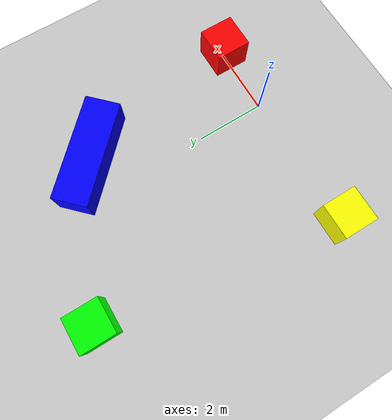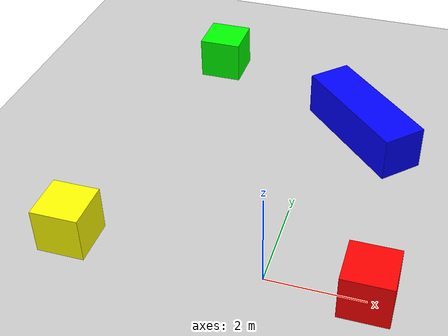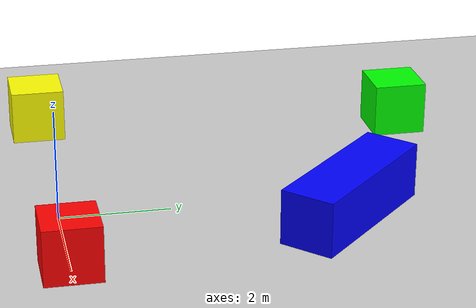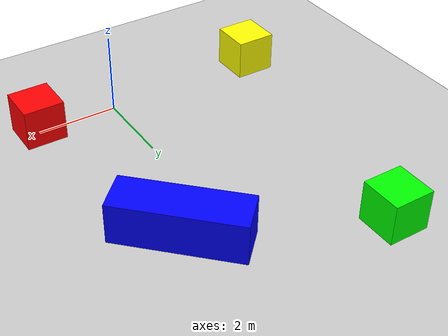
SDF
<sdf version="1.7">
 <world name="default">
  <light name="sun" type="directional">
   <pose>0 0 10 0 -0 0</pose>
   <diffuse>0.8 0.8 0.8 1</diffuse>
   <specular>0.2 0.2 0.2 1</specular>
   <attenuation>
    <range>1000</range>
    <constant>0.9</constant>
    <linear>0.01</linear>
    <quadratic>0.001</quadratic>
   </attenuation>
   <direction>-0.5 0.1 -0.9</direction>
   <spot><inner_angle>0</inner_angle><outer_angle>0</outer_angle><falloff>0</falloff></spot>
  </light>
  <model name="ground_plane">
   <static>1</static>
   <link name="link">
    <collision name="collision">
     <geometry><plane><normal>0 0 1</normal><size>100 100</size></plane></geometry>
     <surface>
      <contact><collide_bitmask>65535</collide_bitmask></contact>
      <friction><ode><mu>100</mu><mu2>50</mu2></ode></friction>
     </surface>
    </collision>
    <visual name="visual">
     <cast_shadows>0</cast_shadows>
     <geometry><plane><normal>0 0 1</normal><size>100 100</size></plane></geometry>
     <material>
      <script><uri>file://media/materials/scripts/gazebo.material</uri><name>Gazebo/Grey</name></script>
     </material>
    </visual>
   </link>
  </model>
  <gravity>0 0 -9.8</gravity>
  <magnetic_field>6e-06 2.3e-05 -4.2e-05</magnetic_field>
  <atmosphere type="adiabatic"/>
  <physics type="ode">
   <max_step_size>0.001</max_step_size>
   <real_time_factor>1</real_time_factor>
   <real_time_update_rate>1000</real_time_update_rate>
  </physics>
  <scene><ambient>0.4 0.4 0.4 1</ambient><background>0.7 0.7 0.7 1</background><shadows>1</shadows></scene>
  <spherical_coordinates>
   <surface_model>EARTH_WGS84</surface_model>
   <latitude_deg>0</latitude_deg>
   <longitude_deg>0</longitude_deg>
   <elevation>0</elevation>
   <heading_deg>0</heading_deg>
  </spherical_coordinates>
  <model name="red_cube">
   <pose>2 0 0.5 0 0 0</pose>
   <static>true</static>
   <link name="link">
    <visual name="visual">
     <geometry><box><size>1 1 1</size></box></geometry>
     <material><ambient>1 0 0 1</ambient></material>
    </visual>
    <collision name="collision"><geometry><box><size>1 1 1</size></box></geometry></collision>
   </link>
  </model>
  <model name="yellow_cube">
   <pose>-4 0 0.5 0 0 0</pose>
   <static>true</static>
   <link name="link">
    <visual name="visual">
     <geometry><box><size>1 1 1</size></box></geometry>
     <material><ambient>1 1 0 1</ambient></material>
    </visual>
    <collision name="collision"><geometry><box><size>1 1 1</size></box></geometry></collision>
   </link>
  </model>
  <model name="blue_cube">
   <pose>1 5 0.5 0 0 0.785</pose>
   <static>true</static>
   <link name="link">
    <visual name="visual">
     <geometry><box><size>1 3 1</size></box></geometry>
     <material><ambient>0 0 1 1</ambient></material>
    </visual>
    <collision name="collision"><geometry><box><size>1 1 1</size></box></geometry></collision>
   </link>
  </model>
  <model name="green_cube">
   <pose>-3 7 0.5 0 0 0</pose>
   <static>true</static>
   <link name="link">
    <visual name="visual">
     <geometry><box><size>1 1 1</size></box></geometry>
     <material><ambient>0 1 0 1</ambient></material>
    </visual>
    <collision name="collision"><geometry><box><size>1 1 1</size></box></geometry></collision>
   </link>
  </model>
 </world>
</sdf>
